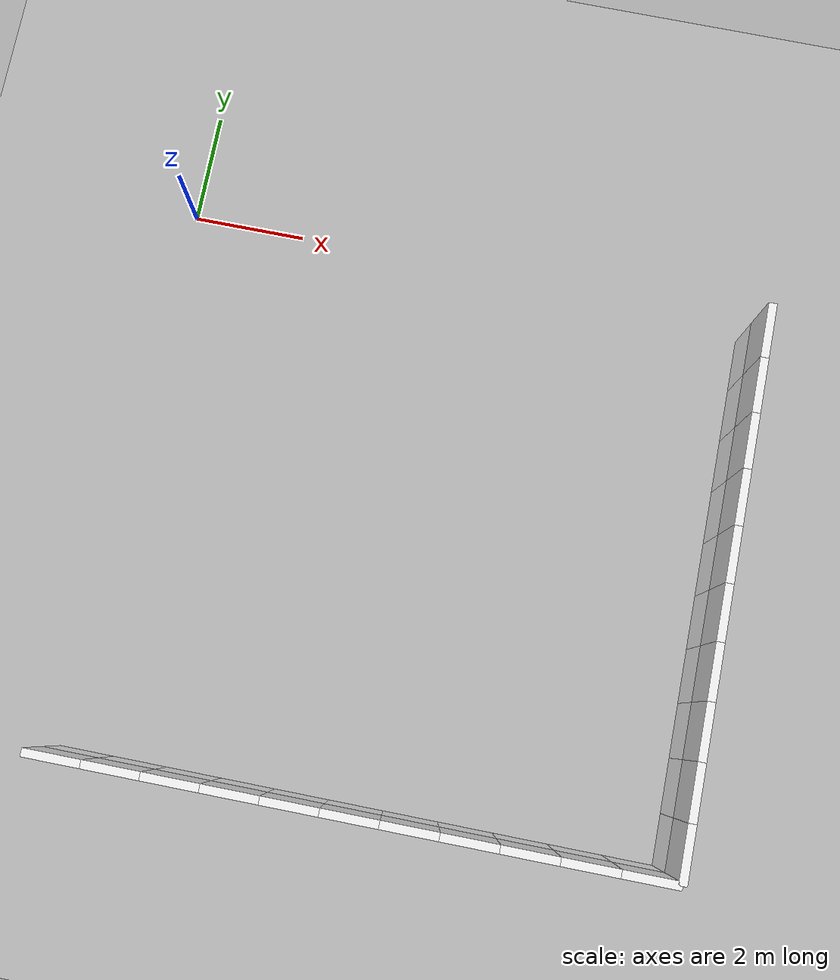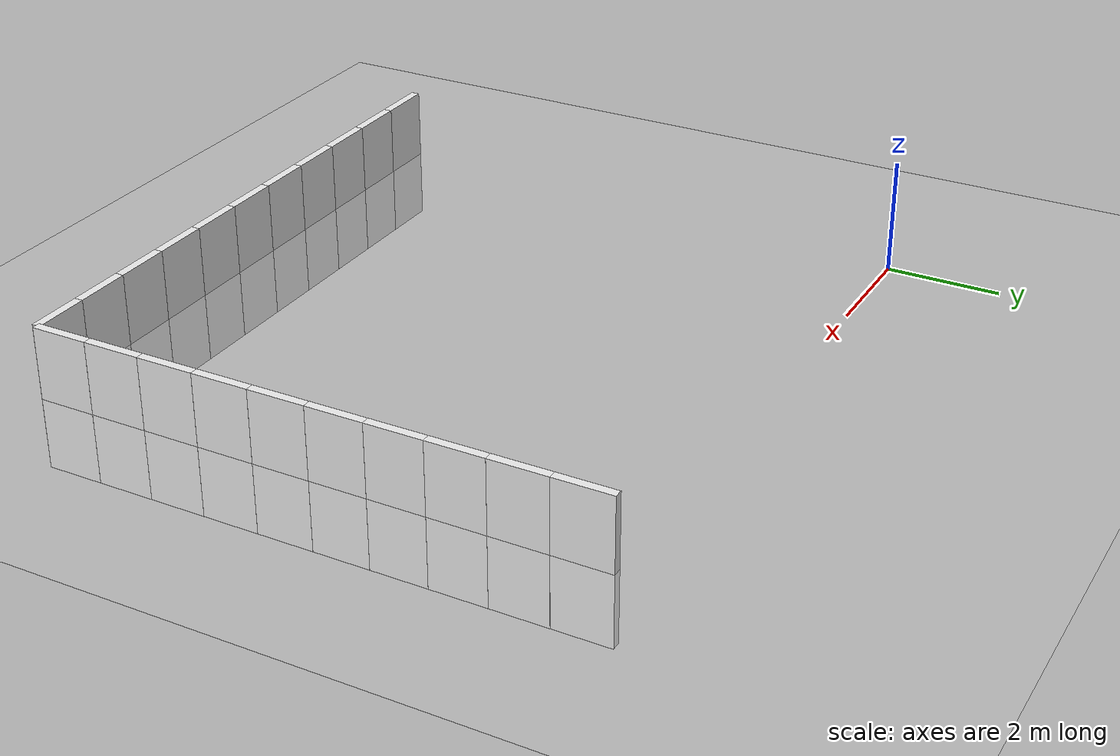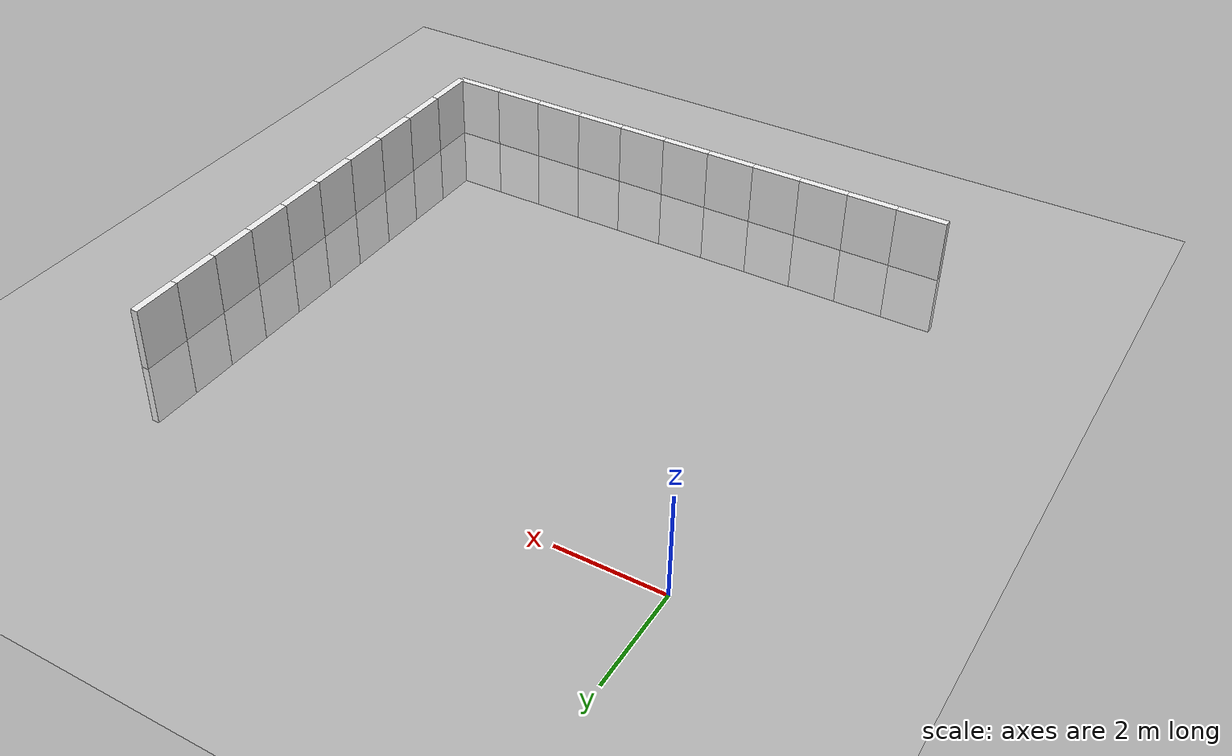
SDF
<sdf version="1.7">
 <world name="default">
  <model name="ground_plane">
   <static>1</static>
   <link name="link">
    <collision name="collision">
     <geometry><plane><normal>0 0 1</normal><size>100 100</size></plane></geometry>
     <surface>
      <contact><collide_bitmask>65535</collide_bitmask></contact>
      <friction><ode><mu>100</mu><mu2>50</mu2></ode></friction>
     </surface>
    </collision>
    <visual name="visual">
     <cast_shadows>0</cast_shadows>
     <geometry><plane><normal>0 0 1</normal><size>100 100</size></plane></geometry>
     <material>
      <script><uri>file://media/materials/scripts/gazebo.material</uri><name>Gazebo/Grey</name></script>
     </material>
    </visual>
   </link>
  </model>
  <model name="wall_front_11">
   <link name="Wall_10">
    <inertial>
     <mass>1</mass>
     <inertia><ixx>1</ixx><ixy>0</ixy><ixz>0</ixz><iyy>1</iyy><iyz>0</iyz><izz>1</izz></inertia>
    </inertial>
    <visual name="Wall_10_Visual_0">
     <geometry><box><size>1 0.15 2.5</size></box></geometry>
     <material>
      <script>
       <uri>model://wall/materials/scripts</uri>
       <uri>model://wall/materials/textures</uri>
       <name>wall_white</name>
      </script>
      <shader type="pixel"><normal_map>__default__</normal_map></shader>
      <ambient>1 1 1 1</ambient>
      <diffuse>1 1 1 1</diffuse>
      <specular>0 0 0 1</specular>
      <emissive>0 0 0 1</emissive>
     </material>
     <meta><layer>0</layer></meta>
    </visual>
    <collision name="Wall_10_Collision_0">
     <geometry><box><size>1 0.15 2.5</size></box></geometry>
     <surface>
      <friction>
       <ode><mu>1</mu><mu2>1</mu2><fdir1>0 0 0</fdir1><slip1>0</slip1><slip2>0</slip2></ode>
       <torsional>
        <coefficient>1</coefficient>
        <patch_radius>0</patch_radius>
        <surface_radius>0</surface_radius>
        <use_patch_radius>1</use_patch_radius>
        <ode><slip>0</slip></ode>
       </torsional>
      </friction>
      <bounce><restitution_coefficient>0</restitution_coefficient><threshold>1e+06</threshold></bounce>
      <contact>
       <collide_without_contact>0</collide_without_contact>
       <collide_without_contact_bitmask>1</collide_without_contact_bitmask>
       <collide_bitmask>1</collide_bitmask>
       <ode>
        <soft_cfm>0</soft_cfm>
        <soft_erp>0.2</soft_erp>
        <kp>1e+13</kp>
        <kd>1</kd>
        <max_vel>0.01</max_vel>
        <min_depth>0</min_depth>
       </ode>
       <bullet>
        <split_impulse>1</split_impulse>
        <split_impulse_penetration_threshold>-0.01</split_impulse_penetration_threshold>
        <soft_cfm>0</soft_cfm>
        <soft_erp>0.2</soft_erp>
        <kp>1e+13</kp>
        <kd>1</kd>
       </bullet>
      </contact>
     </surface>
    </collision>
   </link>
   <static>1</static>
   <pose>10.5 -0.5 0 0 -0 1.57</pose>
  </model>
  <model name="wall_front_12">
   <link name="Wall_10">
    <inertial>
     <mass>1</mass>
     <inertia><ixx>1</ixx><ixy>0</ixy><ixz>0</ixz><iyy>1</iyy><iyz>0</iyz><izz>1</izz></inertia>
    </inertial>
    <visual name="Wall_10_Visual_0">
     <geometry><box><size>1 0.15 2.5</size></box></geometry>
     <material>
      <script>
       <uri>model://wall/materials/scripts</uri>
       <uri>model://wall/materials/textures</uri>
       <name>wall_white</name>
      </script>
      <shader type="pixel"><normal_map>__default__</normal_map></shader>
      <ambient>1 1 1 1</ambient>
      <diffuse>1 1 1 1</diffuse>
      <specular>0 0 0 1</specular>
      <emissive>0 0 0 1</emissive>
     </material>
     <meta><layer>0</layer></meta>
    </visual>
    <collision name="Wall_10_Collision_0">
     <geometry><box><size>1 0.15 2.5</size></box></geometry>
     <surface>
      <friction>
       <ode><mu>1</mu><mu2>1</mu2><fdir1>0 0 0</fdir1><slip1>0</slip1><slip2>0</slip2></ode>
       <torsional>
        <coefficient>1</coefficient>
        <patch_radius>0</patch_radius>
        <surface_radius>0</surface_radius>
        <use_patch_radius>1</use_patch_radius>
        <ode><slip>0</slip></ode>
       </torsional>
      </friction>
      <bounce><restitution_coefficient>0</restitution_coefficient><threshold>1e+06</threshold></bounce>
      <contact>
       <collide_without_contact>0</collide_without_contact>
       <collide_without_contact_bitmask>1</collide_without_contact_bitmask>
       <collide_bitmask>1</collide_bitmask>
       <ode>
        <soft_cfm>0</soft_cfm>
        <soft_erp>0.2</soft_erp>
        <kp>1e+13</kp>
        <kd>1</kd>
        <max_vel>0.01</max_vel>
        <min_depth>0</min_depth>
       </ode>
       <bullet>
        <split_impulse>1</split_impulse>
        <split_impulse_penetration_threshold>-0.01</split_impulse_penetration_threshold>
        <soft_cfm>0</soft_cfm>
        <soft_erp>0.2</soft_erp>
        <kp>1e+13</kp>
        <kd>1</kd>
       </bullet>
      </contact>
     </surface>
    </collision>
   </link>
   <static>1</static>
   <pose>10.5 -1.5 0 0 -0 1.57</pose>
  </model>
  <model name="wall_front_13">
   <link name="Wall_10">
    <inertial>
     <mass>1</mass>
     <inertia><ixx>1</ixx><ixy>0</ixy><ixz>0</ixz><iyy>1</iyy><iyz>0</iyz><izz>1</izz></inertia>
    </inertial>
    <visual name="Wall_10_Visual_0">
     <geometry><box><size>1 0.15 2.5</size></box></geometry>
     <material>
      <script>
       <uri>model://wall/materials/scripts</uri>
       <uri>model://wall/materials/textures</uri>
       <name>wall_white</name>
      </script>
      <shader type="pixel"><normal_map>__default__</normal_map></shader>
      <ambient>1 1 1 1</ambient>
      <diffuse>1 1 1 1</diffuse>
      <specular>0 0 0 1</specular>
      <emissive>0 0 0 1</emissive>
     </material>
     <meta><layer>0</layer></meta>
    </visual>
    <collision name="Wall_10_Collision_0">
     <geometry><box><size>1 0.15 2.5</size></box></geometry>
     <surface>
      <friction>
       <ode><mu>1</mu><mu2>1</mu2><fdir1>0 0 0</fdir1><slip1>0</slip1><slip2>0</slip2></ode>
       <torsional>
        <coefficient>1</coefficient>
        <patch_radius>0</patch_radius>
        <surface_radius>0</surface_radius>
        <use_patch_radius>1</use_patch_radius>
        <ode><slip>0</slip></ode>
       </torsional>
      </friction>
      <bounce><restitution_coefficient>0</restitution_coefficient><threshold>1e+06</threshold></bounce>
      <contact>
       <collide_without_contact>0</collide_without_contact>
       <collide_without_contact_bitmask>1</collide_without_contact_bitmask>
       <collide_bitmask>1</collide_bitmask>
       <ode>
        <soft_cfm>0</soft_cfm>
        <soft_erp>0.2</soft_erp>
        <kp>1e+13</kp>
        <kd>1</kd>
        <max_vel>0.01</max_vel>
        <min_depth>0</min_depth>
       </ode>
       <bullet>
        <split_impulse>1</split_impulse>
        <split_impulse_penetration_threshold>-0.01</split_impulse_penetration_threshold>
        <soft_cfm>0</soft_cfm>
        <soft_erp>0.2</soft_erp>
        <kp>1e+13</kp>
        <kd>1</kd>
       </bullet>
      </contact>
     </surface>
    </collision>
   </link>
   <static>1</static>
   <pose>10.5 -2.5 0 0 -0 1.57</pose>
  </model>
  <model name="wall_front_14">
   <link name="Wall_10">
    <inertial>
     <mass>1</mass>
     <inertia><ixx>1</ixx><ixy>0</ixy><ixz>0</ixz><iyy>1</iyy><iyz>0</iyz><izz>1</izz></inertia>
    </inertial>
    <visual name="Wall_10_Visual_0">
     <geometry><box><size>1 0.15 2.5</size></box></geometry>
     <material>
      <script>
       <uri>model://wall/materials/scripts</uri>
       <uri>model://wall/materials/textures</uri>
       <name>wall_white</name>
      </script>
      <shader type="pixel"><normal_map>__default__</normal_map></shader>
      <ambient>1 1 1 1</ambient>
      <diffuse>1 1 1 1</diffuse>
      <specular>0 0 0 1</specular>
      <emissive>0 0 0 1</emissive>
     </material>
     <meta><layer>0</layer></meta>
    </visual>
    <collision name="Wall_10_Collision_0">
     <geometry><box><size>1 0.15 2.5</size></box></geometry>
     <surface>
      <friction>
       <ode><mu>1</mu><mu2>1</mu2><fdir1>0 0 0</fdir1><slip1>0</slip1><slip2>0</slip2></ode>
       <torsional>
        <coefficient>1</coefficient>
        <patch_radius>0</patch_radius>
        <surface_radius>0</surface_radius>
        <use_patch_radius>1</use_patch_radius>
        <ode><slip>0</slip></ode>
       </torsional>
      </friction>
      <bounce><restitution_coefficient>0</restitution_coefficient><threshold>1e+06</threshold></bounce>
      <contact>
       <collide_without_contact>0</collide_without_contact>
       <collide_without_contact_bitmask>1</collide_without_contact_bitmask>
       <collide_bitmask>1</collide_bitmask>
       <ode>
        <soft_cfm>0</soft_cfm>
        <soft_erp>0.2</soft_erp>
        <kp>1e+13</kp>
        <kd>1</kd>
        <max_vel>0.01</max_vel>
        <min_depth>0</min_depth>
       </ode>
       <bullet>
        <split_impulse>1</split_impulse>
        <split_impulse_penetration_threshold>-0.01</split_impulse_penetration_threshold>
        <soft_cfm>0</soft_cfm>
        <soft_erp>0.2</soft_erp>
        <kp>1e+13</kp>
        <kd>1</kd>
       </bullet>
      </contact>
     </surface>
    </collision>
   </link>
   <static>1</static>
   <pose>10.5 -3.5 0 0 -0 1.57</pose>
  </model>
  <model name="wall_front_15">
   <link name="Wall_10">
    <inertial>
     <mass>1</mass>
     <inertia><ixx>1</ixx><ixy>0</ixy><ixz>0</ixz><iyy>1</iyy><iyz>0</iyz><izz>1</izz></inertia>
    </inertial>
    <visual name="Wall_10_Visual_0">
     <geometry><box><size>1 0.15 2.5</size></box></geometry>
     <material>
      <script>
       <uri>model://wall/materials/scripts</uri>
       <uri>model://wall/materials/textures</uri>
       <name>wall_white</name>
      </script>
      <shader type="pixel"><normal_map>__default__</normal_map></shader>
      <ambient>1 1 1 1</ambient>
      <diffuse>1 1 1 1</diffuse>
      <specular>0 0 0 1</specular>
      <emissive>0 0 0 1</emissive>
     </material>
     <meta><layer>0</layer></meta>
    </visual>
    <collision name="Wall_10_Collision_0">
     <geometry><box><size>1 0.15 2.5</size></box></geometry>
     <surface>
      <friction>
       <ode><mu>1</mu><mu2>1</mu2><fdir1>0 0 0</fdir1><slip1>0</slip1><slip2>0</slip2></ode>
       <torsional>
        <coefficient>1</coefficient>
        <patch_radius>0</patch_radius>
        <surface_radius>0</surface_radius>
        <use_patch_radius>1</use_patch_radius>
        <ode><slip>0</slip></ode>
       </torsional>
      </friction>
      <bounce><restitution_coefficient>0</restitution_coefficient><threshold>1e+06</threshold></bounce>
      <contact>
       <collide_without_contact>0</collide_without_contact>
       <collide_without_contact_bitmask>1</collide_without_contact_bitmask>
       <collide_bitmask>1</collide_bitmask>
       <ode>
        <soft_cfm>0</soft_cfm>
        <soft_erp>0.2</soft_erp>
        <kp>1e+13</kp>
        <kd>1</kd>
        <max_vel>0.01</max_vel>
        <min_depth>0</min_depth>
       </ode>
       <bullet>
        <split_impulse>1</split_impulse>
        <split_impulse_penetration_threshold>-0.01</split_impulse_penetration_threshold>
        <soft_cfm>0</soft_cfm>
        <soft_erp>0.2</soft_erp>
        <kp>1e+13</kp>
        <kd>1</kd>
       </bullet>
      </contact>
     </surface>
    </collision>
   </link>
   <static>1</static>
   <pose>10.5 -4.5 0 0 -0 1.57</pose>
  </model>
  <model name="wall_front_16">
   <link name="Wall_10">
    <inertial>
     <mass>1</mass>
     <inertia><ixx>1</ixx><ixy>0</ixy><ixz>0</ixz><iyy>1</iyy><iyz>0</iyz><izz>1</izz></inertia>
    </inertial>
    <visual name="Wall_10_Visual_0">
     <geometry><box><size>1 0.15 2.5</size></box></geometry>
     <material>
      <script>
       <uri>model://wall/materials/scripts</uri>
       <uri>model://wall/materials/textures</uri>
       <name>wall_white</name>
      </script>
      <shader type="pixel"><normal_map>__default__</normal_map></shader>
      <ambient>1 1 1 1</ambient>
      <diffuse>1 1 1 1</diffuse>
      <specular>0 0 0 1</specular>
      <emissive>0 0 0 1</emissive>
     </material>
     <meta><layer>0</layer></meta>
    </visual>
    <collision name="Wall_10_Collision_0">
     <geometry><box><size>1 0.15 2.5</size></box></geometry>
     <surface>
      <friction>
       <ode><mu>1</mu><mu2>1</mu2><fdir1>0 0 0</fdir1><slip1>0</slip1><slip2>0</slip2></ode>
       <torsional>
        <coefficient>1</coefficient>
        <patch_radius>0</patch_radius>
        <surface_radius>0</surface_radius>
        <use_patch_radius>1</use_patch_radius>
        <ode><slip>0</slip></ode>
       </torsional>
      </friction>
      <bounce><restitution_coefficient>0</restitution_coefficient><threshold>1e+06</threshold></bounce>
      <contact>
       <collide_without_contact>0</collide_without_contact>
       <collide_without_contact_bitmask>1</collide_without_contact_bitmask>
       <collide_bitmask>1</collide_bitmask>
       <ode>
        <soft_cfm>0</soft_cfm>
        <soft_erp>0.2</soft_erp>
        <kp>1e+13</kp>
        <kd>1</kd>
        <max_vel>0.01</max_vel>
        <min_depth>0</min_depth>
       </ode>
       <bullet>
        <split_impulse>1</split_impulse>
        <split_impulse_penetration_threshold>-0.01</split_impulse_penetration_threshold>
        <soft_cfm>0</soft_cfm>
        <soft_erp>0.2</soft_erp>
        <kp>1e+13</kp>
        <kd>1</kd>
       </bullet>
      </contact>
     </surface>
    </collision>
   </link>
   <static>1</static>
   <pose>10.5 -5.5 0 0 -0 1.57</pose>
  </model>
  <model name="wall_front_17">
   <link name="Wall_10">
    <inertial>
     <mass>1</mass>
     <inertia><ixx>1</ixx><ixy>0</ixy><ixz>0</ixz><iyy>1</iyy><iyz>0</iyz><izz>1</izz></inertia>
    </inertial>
    <visual name="Wall_10_Visual_0">
     <geometry><box><size>1 0.15 2.5</size></box></geometry>
     <material>
      <script>
       <uri>model://wall/materials/scripts</uri>
       <uri>model://wall/materials/textures</uri>
       <name>wall_white</name>
      </script>
      <shader type="pixel"><normal_map>__default__</normal_map></shader>
      <ambient>1 1 1 1</ambient>
      <diffuse>1 1 1 1</diffuse>
      <specular>0 0 0 1</specular>
      <emissive>0 0 0 1</emissive>
     </material>
     <meta><layer>0</layer></meta>
    </visual>
    <collision name="Wall_10_Collision_0">
     <geometry><box><size>1 0.15 2.5</size></box></geometry>
     <surface>
      <friction>
       <ode><mu>1</mu><mu2>1</mu2><fdir1>0 0 0</fdir1><slip1>0</slip1><slip2>0</slip2></ode>
       <torsional>
        <coefficient>1</coefficient>
        <patch_radius>0</patch_radius>
        <surface_radius>0</surface_radius>
        <use_patch_radius>1</use_patch_radius>
        <ode><slip>0</slip></ode>
       </torsional>
      </friction>
      <bounce><restitution_coefficient>0</restitution_coefficient><threshold>1e+06</threshold></bounce>
      <contact>
       <collide_without_contact>0</collide_without_contact>
       <collide_without_contact_bitmask>1</collide_without_contact_bitmask>
       <collide_bitmask>1</collide_bitmask>
       <ode>
        <soft_cfm>0</soft_cfm>
        <soft_erp>0.2</soft_erp>
        <kp>1e+13</kp>
        <kd>1</kd>
        <max_vel>0.01</max_vel>
        <min_depth>0</min_depth>
       </ode>
       <bullet>
        <split_impulse>1</split_impulse>
        <split_impulse_penetration_threshold>-0.01</split_impulse_penetration_threshold>
        <soft_cfm>0</soft_cfm>
        <soft_erp>0.2</soft_erp>
        <kp>1e+13</kp>
        <kd>1</kd>
       </bullet>
      </contact>
     </surface>
    </collision>
   </link>
   <static>1</static>
   <pose>10.5 -6.5 0 0 -0 1.57</pose>
  </model>
  <model name="wall_front_18">
   <link name="Wall_10">
    <inertial>
     <mass>1</mass>
     <inertia><ixx>1</ixx><ixy>0</ixy><ixz>0</ixz><iyy>1</iyy><iyz>0</iyz><izz>1</izz></inertia>
    </inertial>
    <visual name="Wall_10_Visual_0">
     <geometry><box><size>1 0.15 2.5</size></box></geometry>
     <material>
      <script>
       <uri>model://wall/materials/scripts</uri>
       <uri>model://wall/materials/textures</uri>
       <name>wall_white</name>
      </script>
      <shader type="pixel"><normal_map>__default__</normal_map></shader>
      <ambient>1 1 1 1</ambient>
      <diffuse>1 1 1 1</diffuse>
      <specular>0 0 0 1</specular>
      <emissive>0 0 0 1</emissive>
     </material>
     <meta><layer>0</layer></meta>
    </visual>
    <collision name="Wall_10_Collision_0">
     <geometry><box><size>1 0.15 2.5</size></box></geometry>
     <surface>
      <friction>
       <ode><mu>1</mu><mu2>1</mu2><fdir1>0 0 0</fdir1><slip1>0</slip1><slip2>0</slip2></ode>
       <torsional>
        <coefficient>1</coefficient>
        <patch_radius>0</patch_radius>
        <surface_radius>0</surface_radius>
        <use_patch_radius>1</use_patch_radius>
        <ode><slip>0</slip></ode>
       </torsional>
      </friction>
      <bounce><restitution_coefficient>0</restitution_coefficient><threshold>1e+06</threshold></bounce>
      <contact>
       <collide_without_contact>0</collide_without_contact>
       <collide_without_contact_bitmask>1</collide_without_contact_bitmask>
       <collide_bitmask>1</collide_bitmask>
       <ode>
        <soft_cfm>0</soft_cfm>
        <soft_erp>0.2</soft_erp>
        <kp>1e+13</kp>
        <kd>1</kd>
        <max_vel>0.01</max_vel>
        <min_depth>0</min_depth>
       </ode>
       <bullet>
        <split_impulse>1</split_impulse>
        <split_impulse_penetration_threshold>-0.01</split_impulse_penetration_threshold>
        <soft_cfm>0</soft_cfm>
        <soft_erp>0.2</soft_erp>
        <kp>1e+13</kp>
        <kd>1</kd>
       </bullet>
      </contact>
     </surface>
    </collision>
   </link>
   <static>1</static>
   <pose>10.5 -7.5 0 0 -0 1.57</pose>
  </model>
  <model name="wall_front_19">
   <link name="Wall_10">
    <inertial>
     <mass>1</mass>
     <inertia><ixx>1</ixx><ixy>0</ixy><ixz>0</ixz><iyy>1</iyy><iyz>0</iyz><izz>1</izz></inertia>
    </inertial>
    <visual name="Wall_10_Visual_0">
     <geometry><box><size>1 0.15 2.5</size></box></geometry>
     <material>
      <script>
       <uri>model://wall/materials/scripts</uri>
       <uri>model://wall/materials/textures</uri>
       <name>wall_white</name>
      </script>
      <shader type="pixel"><normal_map>__default__</normal_map></shader>
      <ambient>1 1 1 1</ambient>
      <diffuse>1 1 1 1</diffuse>
      <specular>0 0 0 1</specular>
      <emissive>0 0 0 1</emissive>
     </material>
     <meta><layer>0</layer></meta>
    </visual>
    <collision name="Wall_10_Collision_0">
     <geometry><box><size>1 0.15 2.5</size></box></geometry>
     <surface>
      <friction>
       <ode><mu>1</mu><mu2>1</mu2><fdir1>0 0 0</fdir1><slip1>0</slip1><slip2>0</slip2></ode>
       <torsional>
        <coefficient>1</coefficient>
        <patch_radius>0</patch_radius>
        <surface_radius>0</surface_radius>
        <use_patch_radius>1</use_patch_radius>
        <ode><slip>0</slip></ode>
       </torsional>
      </friction>
      <bounce><restitution_coefficient>0</restitution_coefficient><threshold>1e+06</threshold></bounce>
      <contact>
       <collide_without_contact>0</collide_without_contact>
       <collide_without_contact_bitmask>1</collide_without_contact_bitmask>
       <collide_bitmask>1</collide_bitmask>
       <ode>
        <soft_cfm>0</soft_cfm>
        <soft_erp>0.2</soft_erp>
        <kp>1e+13</kp>
        <kd>1</kd>
        <max_vel>0.01</max_vel>
        <min_depth>0</min_depth>
       </ode>
       <bullet>
        <split_impulse>1</split_impulse>
        <split_impulse_penetration_threshold>-0.01</split_impulse_penetration_threshold>
        <soft_cfm>0</soft_cfm>
        <soft_erp>0.2</soft_erp>
        <kp>1e+13</kp>
        <kd>1</kd>
       </bullet>
      </contact>
     </surface>
    </collision>
   </link>
   <static>1</static>
   <pose>10.5 -8.5 0 0 -0 1.57</pose>
  </model>
  <model name="wall_front_20">
   <link name="Wall_10">
    <inertial>
     <mass>1</mass>
     <inertia><ixx>1</ixx><ixy>0</ixy><ixz>0</ixz><iyy>1</iyy><iyz>0</iyz><izz>1</izz></inertia>
    </inertial>
    <visual name="Wall_10_Visual_0">
     <geometry><box><size>1 0.15 2.5</size></box></geometry>
     <material>
      <script>
       <uri>model://wall/materials/scripts</uri>
       <uri>model://wall/materials/textures</uri>
       <name>wall_white</name>
      </script>
      <shader type="pixel"><normal_map>__default__</normal_map></shader>
      <ambient>1 1 1 1</ambient>
      <diffuse>1 1 1 1</diffuse>
      <specular>0 0 0 1</specular>
      <emissive>0 0 0 1</emissive>
     </material>
     <meta><layer>0</layer></meta>
    </visual>
    <collision name="Wall_10_Collision_0">
     <geometry><box><size>1 0.15 2.5</size></box></geometry>
     <surface>
      <friction>
       <ode><mu>1</mu><mu2>1</mu2><fdir1>0 0 0</fdir1><slip1>0</slip1><slip2>0</slip2></ode>
       <torsional>
        <coefficient>1</coefficient>
        <patch_radius>0</patch_radius>
        <surface_radius>0</surface_radius>
        <use_patch_radius>1</use_patch_radius>
        <ode><slip>0</slip></ode>
       </torsional>
      </friction>
      <bounce><restitution_coefficient>0</restitution_coefficient><threshold>1e+06</threshold></bounce>
      <contact>
       <collide_without_contact>0</collide_without_contact>
       <collide_without_contact_bitmask>1</collide_without_contact_bitmask>
       <collide_bitmask>1</collide_bitmask>
       <ode>
        <soft_cfm>0</soft_cfm>
        <soft_erp>0.2</soft_erp>
        <kp>1e+13</kp>
        <kd>1</kd>
        <max_vel>0.01</max_vel>
        <min_depth>0</min_depth>
       </ode>
       <bullet>
        <split_impulse>1</split_impulse>
        <split_impulse_penetration_threshold>-0.01</split_impulse_penetration_threshold>
        <soft_cfm>0</soft_cfm>
        <soft_erp>0.2</soft_erp>
        <kp>1e+13</kp>
        <kd>1</kd>
       </bullet>
      </contact>
     </surface>
    </collision>
   </link>
   <static>1</static>
   <pose>10.5 -9.5 0 0 -0 1.57</pose>
  </model>
  <model name="wall_right_01">
   <link name="Wall_10">
    <inertial>
     <mass>1</mass>
     <inertia><ixx>1</ixx><ixy>0</ixy><ixz>0</ixz><iyy>1</iyy><iyz>0</iyz><izz>1</izz></inertia>
    </inertial>
    <visual name="Wall_10_Visual_0">
     <geometry><box><size>1 0.15 2.5</size></box></geometry>
     <material>
      <script>
       <uri>model://wall/materials/scripts</uri>
       <uri>model://wall/materials/textures</uri>
       <name>wall_white</name>
      </script>
      <shader type="pixel"><normal_map>__default__</normal_map></shader>
      <ambient>1 1 1 1</ambient>
      <diffuse>1 1 1 1</diffuse>
      <specular>0 0 0 1</specular>
      <emissive>0 0 0 1</emissive>
     </material>
     <meta><layer>0</layer></meta>
    </visual>
    <collision name="Wall_10_Collision_0">
     <geometry><box><size>1 0.15 2.5</size></box></geometry>
     <surface>
      <friction>
       <ode><mu>1</mu><mu2>1</mu2><fdir1>0 0 0</fdir1><slip1>0</slip1><slip2>0</slip2></ode>
       <torsional>
        <coefficient>1</coefficient>
        <patch_radius>0</patch_radius>
        <surface_radius>0</surface_radius>
        <use_patch_radius>1</use_patch_radius>
        <ode><slip>0</slip></ode>
       </torsional>
      </friction>
      <bounce><restitution_coefficient>0</restitution_coefficient><threshold>1e+06</threshold></bounce>
      <contact>
       <collide_without_contact>0</collide_without_contact>
       <collide_without_contact_bitmask>1</collide_without_contact_bitmask>
       <collide_bitmask>1</collide_bitmask>
       <ode>
        <soft_cfm>0</soft_cfm>
        <soft_erp>0.2</soft_erp>
        <kp>1e+13</kp>
        <kd>1</kd>
        <max_vel>0.01</max_vel>
        <min_depth>0</min_depth>
       </ode>
       <bullet>
        <split_impulse>1</split_impulse>
        <split_impulse_penetration_threshold>-0.01</split_impulse_penetration_threshold>
        <soft_cfm>0</soft_cfm>
        <soft_erp>0.2</soft_erp>
        <kp>1e+13</kp>
        <kd>1</kd>
       </bullet>
      </contact>
     </surface>
    </collision>
   </link>
   <static>1</static>
   <pose>10 -10 0 0 -0 0</pose>
  </model>
  <model name="wall_right_02">
   <link name="Wall_10">
    <inertial>
     <mass>1</mass>
     <inertia><ixx>1</ixx><ixy>0</ixy><ixz>0</ixz><iyy>1</iyy><iyz>0</iyz><izz>1</izz></inertia>
    </inertial>
    <visual name="Wall_10_Visual_0">
     <geometry><box><size>1 0.15 2.5</size></box></geometry>
     <material>
      <script>
       <uri>model://wall/materials/scripts</uri>
       <uri>model://wall/materials/textures</uri>
       <name>wall_white</name>
      </script>
      <shader type="pixel"><normal_map>__default__</normal_map></shader>
      <ambient>1 1 1 1</ambient>
      <diffuse>1 1 1 1</diffuse>
      <specular>0 0 0 1</specular>
      <emissive>0 0 0 1</emissive>
     </material>
     <meta><layer>0</layer></meta>
    </visual>
    <collision name="Wall_10_Collision_0">
     <geometry><box><size>1 0.15 2.5</size></box></geometry>
     <surface>
      <friction>
       <ode><mu>1</mu><mu2>1</mu2><fdir1>0 0 0</fdir1><slip1>0</slip1><slip2>0</slip2></ode>
       <torsional>
        <coefficient>1</coefficient>
        <patch_radius>0</patch_radius>
        <surface_radius>0</surface_radius>
        <use_patch_radius>1</use_patch_radius>
        <ode><slip>0</slip></ode>
       </torsional>
      </friction>
      <bounce><restitution_coefficient>0</restitution_coefficient><threshold>1e+06</threshold></bounce>
      <contact>
       <collide_without_contact>0</collide_without_contact>
       <collide_without_contact_bitmask>1</collide_without_contact_bitmask>
       <collide_bitmask>1</collide_bitmask>
       <ode>
        <soft_cfm>0</soft_cfm>
        <soft_erp>0.2</soft_erp>
        <kp>1e+13</kp>
        <kd>1</kd>
        <max_vel>0.01</max_vel>
        <min_depth>0</min_depth>
       </ode>
       <bullet>
        <split_impulse>1</split_impulse>
        <split_impulse_penetration_threshold>-0.01</split_impulse_penetration_threshold>
        <soft_cfm>0</soft_cfm>
        <soft_erp>0.2</soft_erp>
        <kp>1e+13</kp>
        <kd>1</kd>
       </bullet>
      </contact>
     </surface>
    </collision>
   </link>
   <static>1</static>
   <pose>9 -10 0 0 -0 0</pose>
  </model>
  <model name="wall_right_03">
   <link name="Wall_10">
    <inertial>
     <mass>1</mass>
     <inertia><ixx>1</ixx><ixy>0</ixy><ixz>0</ixz><iyy>1</iyy><iyz>0</iyz><izz>1</izz></inertia>
    </inertial>
    <visual name="Wall_10_Visual_0">
     <geometry><box><size>1 0.15 2.5</size></box></geometry>
     <material>
      <script>
       <uri>model://wall/materials/scripts</uri>
       <uri>model://wall/materials/textures</uri>
       <name>wall_white</name>
      </script>
      <shader type="pixel"><normal_map>__default__</normal_map></shader>
      <ambient>1 1 1 1</ambient>
      <diffuse>1 1 1 1</diffuse>
      <specular>0 0 0 1</specular>
      <emissive>0 0 0 1</emissive>
     </material>
     <meta><layer>0</layer></meta>
    </visual>
    <collision name="Wall_10_Collision_0">
     <geometry><box><size>1 0.15 2.5</size></box></geometry>
     <surface>
      <friction>
       <ode><mu>1</mu><mu2>1</mu2><fdir1>0 0 0</fdir1><slip1>0</slip1><slip2>0</slip2></ode>
       <torsional>
        <coefficient>1</coefficient>
        <patch_radius>0</patch_radius>
        <surface_radius>0</surface_radius>
        <use_patch_radius>1</use_patch_radius>
        <ode><slip>0</slip></ode>
       </torsional>
      </friction>
      <bounce><restitution_coefficient>0</restitution_coefficient><threshold>1e+06</threshold></bounce>
      <contact>
       <collide_without_contact>0</collide_without_contact>
       <collide_without_contact_bitmask>1</collide_without_contact_bitmask>
       <collide_bitmask>1</collide_bitmask>
       <ode>
        <soft_cfm>0</soft_cfm>
        <soft_erp>0.2</soft_erp>
        <kp>1e+13</kp>
        <kd>1</kd>
        <max_vel>0.01</max_vel>
        <min_depth>0</min_depth>
       </ode>
       <bullet>
        <split_impulse>1</split_impulse>
        <split_impulse_penetration_threshold>-0.01</split_impulse_penetration_threshold>
        <soft_cfm>0</soft_cfm>
        <soft_erp>0.2</soft_erp>
        <kp>1e+13</kp>
        <kd>1</kd>
       </bullet>
      </contact>
     </surface>
    </collision>
   </link>
   <static>1</static>
   <pose>8 -10 0 0 -0 0</pose>
  </model>
  <model name="wall_right_04">
   <link name="Wall_10">
    <inertial>
     <mass>1</mass>
     <inertia><ixx>1</ixx><ixy>0</ixy><ixz>0</ixz><iyy>1</iyy><iyz>0</iyz><izz>1</izz></inertia>
    </inertial>
    <visual name="Wall_10_Visual_0">
     <geometry><box><size>1 0.15 2.5</size></box></geometry>
     <material>
      <script>
       <uri>model://wall/materials/scripts</uri>
       <uri>model://wall/materials/textures</uri>
       <name>wall_white</name>
      </script>
      <shader type="pixel"><normal_map>__default__</normal_map></shader>
      <ambient>1 1 1 1</ambient>
      <diffuse>1 1 1 1</diffuse>
      <specular>0 0 0 1</specular>
      <emissive>0 0 0 1</emissive>
     </material>
     <meta><layer>0</layer></meta>
    </visual>
    <collision name="Wall_10_Collision_0">
     <geometry><box><size>1 0.15 2.5</size></box></geometry>
     <surface>
      <friction>
       <ode><mu>1</mu><mu2>1</mu2><fdir1>0 0 0</fdir1><slip1>0</slip1><slip2>0</slip2></ode>
       <torsional>
        <coefficient>1</coefficient>
        <patch_radius>0</patch_radius>
        <surface_radius>0</surface_radius>
        <use_patch_radius>1</use_patch_radius>
        <ode><slip>0</slip></ode>
       </torsional>
      </friction>
      <bounce><restitution_coefficient>0</restitution_coefficient><threshold>1e+06</threshold></bounce>
      <contact>
       <collide_without_contact>0</collide_without_contact>
       <collide_without_contact_bitmask>1</collide_without_contact_bitmask>
       <collide_bitmask>1</collide_bitmask>
       <ode>
        <soft_cfm>0</soft_cfm>
        <soft_erp>0.2</soft_erp>
        <kp>1e+13</kp>
        <kd>1</kd>
        <max_vel>0.01</max_vel>
        <min_depth>0</min_depth>
       </ode>
       <bullet>
        <split_impulse>1</split_impulse>
        <split_impulse_penetration_threshold>-0.01</split_impulse_penetration_threshold>
        <soft_cfm>0</soft_cfm>
        <soft_erp>0.2</soft_erp>
        <kp>1e+13</kp>
        <kd>1</kd>
       </bullet>
      </contact>
     </surface>
    </collision>
   </link>
   <static>1</static>
   <pose>7 -10 0 0 -0 0</pose>
  </model>
  <model name="wall_right_05">
   <link name="Wall_10">
    <inertial>
     <mass>1</mass>
     <inertia><ixx>1</ixx><ixy>0</ixy><ixz>0</ixz><iyy>1</iyy><iyz>0</iyz><izz>1</izz></inertia>
    </inertial>
    <visual name="Wall_10_Visual_0">
     <geometry><box><size>1 0.15 2.5</size></box></geometry>
     <material>
      <script>
       <uri>model://wall/materials/scripts</uri>
       <uri>model://wall/materials/textures</uri>
       <name>wall_white</name>
      </script>
      <shader type="pixel"><normal_map>__default__</normal_map></shader>
      <ambient>1 1 1 1</ambient>
      <diffuse>1 1 1 1</diffuse>
      <specular>0 0 0 1</specular>
      <emissive>0 0 0 1</emissive>
     </material>
     <meta><layer>0</layer></meta>
    </visual>
    <collision name="Wall_10_Collision_0">
     <geometry><box><size>1 0.15 2.5</size></box></geometry>
     <surface>
      <friction>
       <ode><mu>1</mu><mu2>1</mu2><fdir1>0 0 0</fdir1><slip1>0</slip1><slip2>0</slip2></ode>
       <torsional>
        <coefficient>1</coefficient>
        <patch_radius>0</patch_radius>
        <surface_radius>0</surface_radius>
        <use_patch_radius>1</use_patch_radius>
        <ode><slip>0</slip></ode>
       </torsional>
      </friction>
      <bounce><restitution_coefficient>0</restitution_coefficient><threshold>1e+06</threshold></bounce>
      <contact>
       <collide_without_contact>0</collide_without_contact>
       <collide_without_contact_bitmask>1</collide_without_contact_bitmask>
       <collide_bitmask>1</collide_bitmask>
       <ode>
        <soft_cfm>0</soft_cfm>
        <soft_erp>0.2</soft_erp>
        <kp>1e+13</kp>
        <kd>1</kd>
        <max_vel>0.01</max_vel>
        <min_depth>0</min_depth>
       </ode>
       <bullet>
        <split_impulse>1</split_impulse>
        <split_impulse_penetration_threshold>-0.01</split_impulse_penetration_threshold>
        <soft_cfm>0</soft_cfm>
        <soft_erp>0.2</soft_erp>
        <kp>1e+13</kp>
        <kd>1</kd>
       </bullet>
      </contact>
     </surface>
    </collision>
   </link>
   <static>1</static>
   <pose>6 -10 0 0 -0 0</pose>
  </model>
  <model name="wall_right_06">
   <link name="Wall_10">
    <inertial>
     <mass>1</mass>
     <inertia><ixx>1</ixx><ixy>0</ixy><ixz>0</ixz><iyy>1</iyy><iyz>0</iyz><izz>1</izz></inertia>
    </inertial>
    <visual name="Wall_10_Visual_0">
     <geometry><box><size>1 0.15 2.5</size></box></geometry>
     <material>
      <script>
       <uri>model://wall/materials/scripts</uri>
       <uri>model://wall/materials/textures</uri>
       <name>wall_white</name>
      </script>
      <shader type="pixel"><normal_map>__default__</normal_map></shader>
      <ambient>1 1 1 1</ambient>
      <diffuse>1 1 1 1</diffuse>
      <specular>0 0 0 1</specular>
      <emissive>0 0 0 1</emissive>
     </material>
     <meta><layer>0</layer></meta>
    </visual>
    <collision name="Wall_10_Collision_0">
     <geometry><box><size>1 0.15 2.5</size></box></geometry>
     <surface>
      <friction>
       <ode><mu>1</mu><mu2>1</mu2><fdir1>0 0 0</fdir1><slip1>0</slip1><slip2>0</slip2></ode>
       <torsional>
        <coefficient>1</coefficient>
        <patch_radius>0</patch_radius>
        <surface_radius>0</surface_radius>
        <use_patch_radius>1</use_patch_radius>
        <ode><slip>0</slip></ode>
       </torsional>
      </friction>
      <bounce><restitution_coefficient>0</restitution_coefficient><threshold>1e+06</threshold></bounce>
      <contact>
       <collide_without_contact>0</collide_without_contact>
       <collide_without_contact_bitmask>1</collide_without_contact_bitmask>
       <collide_bitmask>1</collide_bitmask>
       <ode>
        <soft_cfm>0</soft_cfm>
        <soft_erp>0.2</soft_erp>
        <kp>1e+13</kp>
        <kd>1</kd>
        <max_vel>0.01</max_vel>
        <min_depth>0</min_depth>
       </ode>
       <bullet>
        <split_impulse>1</split_impulse>
        <split_impulse_penetration_threshold>-0.01</split_impulse_penetration_threshold>
        <soft_cfm>0</soft_cfm>
        <soft_erp>0.2</soft_erp>
        <kp>1e+13</kp>
        <kd>1</kd>
       </bullet>
      </contact>
     </surface>
    </collision>
   </link>
   <static>1</static>
   <pose>5 -10 0 0 -0 0</pose>
  </model>
  <model name="wall_right_07">
   <link name="Wall_10">
    <inertial>
     <mass>1</mass>
     <inertia><ixx>1</ixx><ixy>0</ixy><ixz>0</ixz><iyy>1</iyy><iyz>0</iyz><izz>1</izz></inertia>
    </inertial>
    <visual name="Wall_10_Visual_0">
     <geometry><box><size>1 0.15 2.5</size></box></geometry>
     <material>
      <script>
       <uri>model://wall/materials/scripts</uri>
       <uri>model://wall/materials/textures</uri>
       <name>wall_white</name>
      </script>
      <shader type="pixel"><normal_map>__default__</normal_map></shader>
      <ambient>1 1 1 1</ambient>
      <diffuse>1 1 1 1</diffuse>
      <specular>0 0 0 1</specular>
      <emissive>0 0 0 1</emissive>
     </material>
     <meta><layer>0</layer></meta>
    </visual>
    <collision name="Wall_10_Collision_0">
     <geometry><box><size>1 0.15 2.5</size></box></geometry>
     <surface>
      <friction>
       <ode><mu>1</mu><mu2>1</mu2><fdir1>0 0 0</fdir1><slip1>0</slip1><slip2>0</slip2></ode>
       <torsional>
        <coefficient>1</coefficient>
        <patch_radius>0</patch_radius>
        <surface_radius>0</surface_radius>
        <use_patch_radius>1</use_patch_radius>
        <ode><slip>0</slip></ode>
       </torsional>
      </friction>
      <bounce><restitution_coefficient>0</restitution_coefficient><threshold>1e+06</threshold></bounce>
      <contact>
       <collide_without_contact>0</collide_without_contact>
       <collide_without_contact_bitmask>1</collide_without_contact_bitmask>
       <collide_bitmask>1</collide_bitmask>
       <ode>
        <soft_cfm>0</soft_cfm>
        <soft_erp>0.2</soft_erp>
        <kp>1e+13</kp>
        <kd>1</kd>
        <max_vel>0.01</max_vel>
        <min_depth>0</min_depth>
       </ode>
       <bullet>
        <split_impulse>1</split_impulse>
        <split_impulse_penetration_threshold>-0.01</split_impulse_penetration_threshold>
        <soft_cfm>0</soft_cfm>
        <soft_erp>0.2</soft_erp>
        <kp>1e+13</kp>
        <kd>1</kd>
       </bullet>
      </contact>
     </surface>
    </collision>
   </link>
   <static>1</static>
   <pose>4 -10 0 0 -0 0</pose>
  </model>
  <model name="wall_right_08">
   <link name="Wall_10">
    <inertial>
     <mass>1</mass>
     <inertia><ixx>1</ixx><ixy>0</ixy><ixz>0</ixz><iyy>1</iyy><iyz>0</iyz><izz>1</izz></inertia>
    </inertial>
    <visual name="Wall_10_Visual_0">
     <geometry><box><size>1 0.15 2.5</size></box></geometry>
     <material>
      <script>
       <uri>model://wall/materials/scripts</uri>
       <uri>model://wall/materials/textures</uri>
       <name>wall_white</name>
      </script>
      <shader type="pixel"><normal_map>__default__</normal_map></shader>
      <ambient>1 1 1 1</ambient>
      <diffuse>1 1 1 1</diffuse>
      <specular>0 0 0 1</specular>
      <emissive>0 0 0 1</emissive>
     </material>
     <meta><layer>0</layer></meta>
    </visual>
    <collision name="Wall_10_Collision_0">
     <geometry><box><size>1 0.15 2.5</size></box></geometry>
     <surface>
      <friction>
       <ode><mu>1</mu><mu2>1</mu2><fdir1>0 0 0</fdir1><slip1>0</slip1><slip2>0</slip2></ode>
       <torsional>
        <coefficient>1</coefficient>
        <patch_radius>0</patch_radius>
        <surface_radius>0</surface_radius>
        <use_patch_radius>1</use_patch_radius>
        <ode><slip>0</slip></ode>
       </torsional>
      </friction>
      <bounce><restitution_coefficient>0</restitution_coefficient><threshold>1e+06</threshold></bounce>
      <contact>
       <collide_without_contact>0</collide_without_contact>
       <collide_without_contact_bitmask>1</collide_without_contact_bitmask>
       <collide_bitmask>1</collide_bitmask>
       <ode>
        <soft_cfm>0</soft_cfm>
        <soft_erp>0.2</soft_erp>
        <kp>1e+13</kp>
        <kd>1</kd>
        <max_vel>0.01</max_vel>
        <min_depth>0</min_depth>
       </ode>
       <bullet>
        <split_impulse>1</split_impulse>
        <split_impulse_penetration_threshold>-0.01</split_impulse_penetration_threshold>
        <soft_cfm>0</soft_cfm>
        <soft_erp>0.2</soft_erp>
        <kp>1e+13</kp>
        <kd>1</kd>
       </bullet>
      </contact>
     </surface>
    </collision>
   </link>
   <static>1</static>
   <pose>3 -10 0 0 -0 0</pose>
  </model>
  <model name="wall_right_09">
   <link name="Wall_10">
    <inertial>
     <mass>1</mass>
     <inertia><ixx>1</ixx><ixy>0</ixy><ixz>0</ixz><iyy>1</iyy><iyz>0</iyz><izz>1</izz></inertia>
    </inertial>
    <visual name="Wall_10_Visual_0">
     <geometry><box><size>1 0.15 2.5</size></box></geometry>
     <material>
      <script>
       <uri>model://wall/materials/scripts</uri>
       <uri>model://wall/materials/textures</uri>
       <name>wall_white</name>
      </script>
      <shader type="pixel"><normal_map>__default__</normal_map></shader>
      <ambient>1 1 1 1</ambient>
      <diffuse>1 1 1 1</diffuse>
      <specular>0 0 0 1</specular>
      <emissive>0 0 0 1</emissive>
     </material>
     <meta><layer>0</layer></meta>
    </visual>
    <collision name="Wall_10_Collision_0">
     <geometry><box><size>1 0.15 2.5</size></box></geometry>
     <surface>
      <friction>
       <ode><mu>1</mu><mu2>1</mu2><fdir1>0 0 0</fdir1><slip1>0</slip1><slip2>0</slip2></ode>
       <torsional>
        <coefficient>1</coefficient>
        <patch_radius>0</patch_radius>
        <surface_radius>0</surface_radius>
        <use_patch_radius>1</use_patch_radius>
        <ode><slip>0</slip></ode>
       </torsional>
      </friction>
      <bounce><restitution_coefficient>0</restitution_coefficient><threshold>1e+06</threshold></bounce>
      <contact>
       <collide_without_contact>0</collide_without_contact>
       <collide_without_contact_bitmask>1</collide_without_contact_bitmask>
       <collide_bitmask>1</collide_bitmask>
       <ode>
        <soft_cfm>0</soft_cfm>
        <soft_erp>0.2</soft_erp>
        <kp>1e+13</kp>
        <kd>1</kd>
        <max_vel>0.01</max_vel>
        <min_depth>0</min_depth>
       </ode>
       <bullet>
        <split_impulse>1</split_impulse>
        <split_impulse_penetration_threshold>-0.01</split_impulse_penetration_threshold>
        <soft_cfm>0</soft_cfm>
        <soft_erp>0.2</soft_erp>
        <kp>1e+13</kp>
        <kd>1</kd>
       </bullet>
      </contact>
     </surface>
    </collision>
   </link>
   <static>1</static>
   <pose>2 -10 0 0 -0 0</pose>
  </model>
  <model name="wall_right_10">
   <link name="Wall_10">
    <inertial>
     <mass>1</mass>
     <inertia><ixx>1</ixx><ixy>0</ixy><ixz>0</ixz><iyy>1</iyy><iyz>0</iyz><izz>1</izz></inertia>
    </inertial>
    <visual name="Wall_10_Visual_0">
     <geometry><box><size>1 0.15 2.5</size></box></geometry>
     <material>
      <script>
       <uri>model://wall/materials/scripts</uri>
       <uri>model://wall/materials/textures</uri>
       <name>wall_white</name>
      </script>
      <shader type="pixel"><normal_map>__default__</normal_map></shader>
      <ambient>1 1 1 1</ambient>
      <diffuse>1 1 1 1</diffuse>
      <specular>0 0 0 1</specular>
      <emissive>0 0 0 1</emissive>
     </material>
     <meta><layer>0</layer></meta>
    </visual>
    <collision name="Wall_10_Collision_0">
     <geometry><box><size>1 0.15 2.5</size></box></geometry>
     <surface>
      <friction>
       <ode><mu>1</mu><mu2>1</mu2><fdir1>0 0 0</fdir1><slip1>0</slip1><slip2>0</slip2></ode>
       <torsional>
        <coefficient>1</coefficient>
        <patch_radius>0</patch_radius>
        <surface_radius>0</surface_radius>
        <use_patch_radius>1</use_patch_radius>
        <ode><slip>0</slip></ode>
       </torsional>
      </friction>
      <bounce><restitution_coefficient>0</restitution_coefficient><threshold>1e+06</threshold></bounce>
      <contact>
       <collide_without_contact>0</collide_without_contact>
       <collide_without_contact_bitmask>1</collide_without_contact_bitmask>
       <collide_bitmask>1</collide_bitmask>
       <ode>
        <soft_cfm>0</soft_cfm>
        <soft_erp>0.2</soft_erp>
        <kp>1e+13</kp>
        <kd>1</kd>
        <max_vel>0.01</max_vel>
        <min_depth>0</min_depth>
       </ode>
       <bullet>
        <split_impulse>1</split_impulse>
        <split_impulse_penetration_threshold>-0.01</split_impulse_penetration_threshold>
        <soft_cfm>0</soft_cfm>
        <soft_erp>0.2</soft_erp>
        <kp>1e+13</kp>
        <kd>1</kd>
       </bullet>
      </contact>
     </surface>
    </collision>
   </link>
   <static>1</static>
   <pose>1 -10 0 0 -0 0</pose>
  </model>
  <model name="wall_right_11">
   <link name="Wall_10">
    <inertial>
     <mass>1</mass>
     <inertia><ixx>1</ixx><ixy>0</ixy><ixz>0</ixz><iyy>1</iyy><iyz>0</iyz><izz>1</izz></inertia>
    </inertial>
    <visual name="Wall_10_Visual_0">
     <geometry><box><size>1 0.15 2.5</size></box></geometry>
     <material>
      <script>
       <uri>model://wall/materials/scripts</uri>
       <uri>model://wall/materials/textures</uri>
       <name>wall_white</name>
      </script>
      <shader type="pixel"><normal_map>__default__</normal_map></shader>
      <ambient>1 1 1 1</ambient>
      <diffuse>1 1 1 1</diffuse>
      <specular>0 0 0 1</specular>
      <emissive>0 0 0 1</emissive>
     </material>
     <meta><layer>0</layer></meta>
    </visual>
    <collision name="Wall_10_Collision_0">
     <geometry><box><size>1 0.15 2.5</size></box></geometry>
     <surface>
      <friction>
       <ode><mu>1</mu><mu2>1</mu2><fdir1>0 0 0</fdir1><slip1>0</slip1><slip2>0</slip2></ode>
       <torsional>
        <coefficient>1</coefficient>
        <patch_radius>0</patch_radius>
        <surface_radius>0</surface_radius>
        <use_patch_radius>1</use_patch_radius>
        <ode><slip>0</slip></ode>
       </torsional>
      </friction>
      <bounce><restitution_coefficient>0</restitution_coefficient><threshold>1e+06</threshold></bounce>
      <contact>
       <collide_without_contact>0</collide_without_contact>
       <collide_without_contact_bitmask>1</collide_without_contact_bitmask>
       <collide_bitmask>1</collide_bitmask>
       <ode>
        <soft_cfm>0</soft_cfm>
        <soft_erp>0.2</soft_erp>
        <kp>1e+13</kp>
        <kd>1</kd>
        <max_vel>0.01</max_vel>
        <min_depth>0</min_depth>
       </ode>
       <bullet>
        <split_impulse>1</split_impulse>
        <split_impulse_penetration_threshold>-0.01</split_impulse_penetration_threshold>
        <soft_cfm>0</soft_cfm>
        <soft_erp>0.2</soft_erp>
        <kp>1e+13</kp>
        <kd>1</kd>
       </bullet>
      </contact>
     </surface>
    </collision>
   </link>
   <static>1</static>
   <pose>0 -10 0 0 -0 0</pose>
  </model>
 </world>
</sdf>
